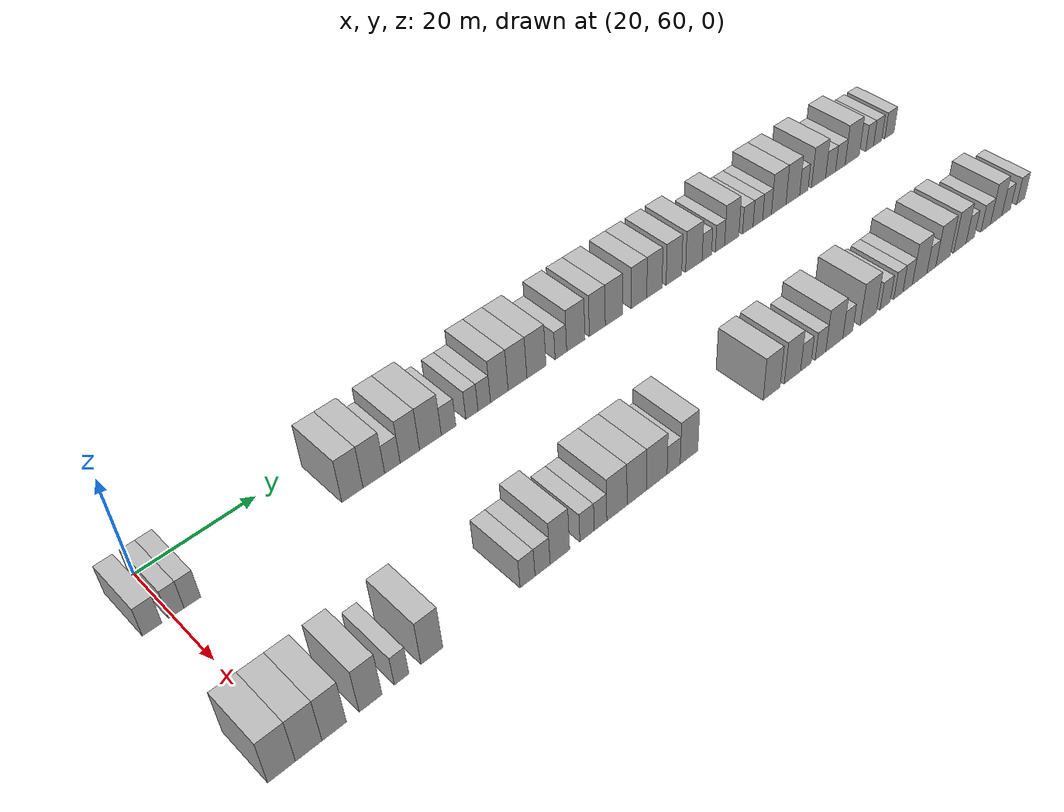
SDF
<sdf version="1.6">
 <world name="default">
  <model name="building_76">
   <static>1</static>
   <pose>25.0000 56.8490 0 0.000000 0.000000 0.000000</pose>
   <link name="link">
    <pose>0 0 3.00 0 0 0</pose>
    <collision name="collision"><geometry><box><size>10.0000 2.9869 6.0000</size></box></geometry></collision>
    <visual name="visual">
     <cast_shadows>0</cast_shadows>
     <geometry><box><size>10.0000 2.9869 6.0000</size></box></geometry>
     <material>
      <script>
       <uri>model://HANNAS_wall/materials/scripts</uri>
       <uri>model://HANNAS_wall/materials/textures</uri>
       <name>vrc/HANNAS_wall</name>
      </script>
     </material>
    </visual>
   </link>
  </model>
  <model name="building_77">
   <static>1</static>
   <pose>25.0000 60.5534 0 0.000000 0.000000 0.000000</pose>
   <link name="link">
    <pose>0 0 3.00 0 0 0</pose>
    <collision name="collision"><geometry><box><size>10.0000 2.4219 6.0000</size></box></geometry></collision>
    <visual name="visual">
     <cast_shadows>0</cast_shadows>
     <geometry><box><size>10.0000 2.4219 6.0000</size></box></geometry>
     <material>
      <script>
       <uri>model://HANNAS_wall/materials/scripts</uri>
       <uri>model://HANNAS_wall/materials/textures</uri>
       <name>vrc/HANNAS_wall</name>
      </script>
     </material>
    </visual>
   </link>
  </model>
  <model name="building_78">
   <static>1</static>
   <pose>25.0000 63.0762 0 0.000000 0.000000 0.000000</pose>
   <link name="link">
    <pose>0 0 3.00 0 0 0</pose>
    <collision name="collision"><geometry><box><size>10.0000 2.6237 6.0000</size></box></geometry></collision>
    <visual name="visual">
     <cast_shadows>0</cast_shadows>
     <geometry><box><size>10.0000 2.6237 6.0000</size></box></geometry>
     <material>
      <script>
       <uri>model://HANNAS_wall/materials/scripts</uri>
       <uri>model://HANNAS_wall/materials/textures</uri>
       <name>vrc/HANNAS_wall</name>
      </script>
     </material>
    </visual>
   </link>
  </model>
  <model name="building_79">
   <static>1</static>
   <pose>25.0000 90.1974 0 0.000000 0.000000 0.000000</pose>
   <link name="link">
    <pose>0 0 4.50 0 0 0</pose>
    <collision name="collision"><geometry><box><size>10.0000 3.8729 9.0000</size></box></geometry></collision>
    <visual name="visual">
     <cast_shadows>0</cast_shadows>
     <geometry><box><size>10.0000 3.8729 9.0000</size></box></geometry>
     <material>
      <script>
       <uri>model://HANNAS_wall/materials/scripts</uri>
       <uri>model://HANNAS_wall/materials/textures</uri>
       <name>vrc/HANNAS_wall</name>
      </script>
     </material>
    </visual>
   </link>
  </model>
  <model name="building_80">
   <static>1</static>
   <pose>25.0000 94.1409 0 0.000000 0.000000 0.000000</pose>
   <link name="link">
    <pose>0 0 4.50 0 0 0</pose>
    <collision name="collision"><geometry><box><size>10.0000 4.0142 9.0000</size></box></geometry></collision>
    <visual name="visual">
     <cast_shadows>0</cast_shadows>
     <geometry><box><size>10.0000 4.0142 9.0000</size></box></geometry>
     <material>
      <script>
       <uri>model://HANNAS_wall/materials/scripts</uri>
       <uri>model://HANNAS_wall/materials/textures</uri>
       <name>vrc/HANNAS_wall</name>
      </script>
     </material>
    </visual>
   </link>
  </model>
  <model name="building_81">
   <static>1</static>
   <pose>25.0000 97.6164 0 0.000000 0.000000 0.000000</pose>
   <link name="link">
    <pose>0 0 3.00 0 0 0</pose>
    <collision name="collision"><geometry><box><size>10.0000 2.9367 6.0000</size></box></geometry></collision>
    <visual name="visual">
     <cast_shadows>0</cast_shadows>
     <geometry><box><size>10.0000 2.9367 6.0000</size></box></geometry>
     <material>
      <script>
       <uri>model://HANNAS_wall/materials/scripts</uri>
       <uri>model://HANNAS_wall/materials/textures</uri>
       <name>vrc/HANNAS_wall</name>
      </script>
     </material>
    </visual>
   </link>
  </model>
  <model name="building_82">
   <static>1</static>
   <pose>25.0000 100.9340 0 0.000000 0.000000 0.000000</pose>
   <link name="link">
    <pose>0 0 4.50 0 0 0</pose>
    <collision name="collision"><geometry><box><size>10.0000 3.6985 9.0000</size></box></geometry></collision>
    <visual name="visual">
     <cast_shadows>0</cast_shadows>
     <geometry><box><size>10.0000 3.6985 9.0000</size></box></geometry>
     <material>
      <script>
       <uri>model://HANNAS_wall/materials/scripts</uri>
       <uri>model://HANNAS_wall/materials/textures</uri>
       <name>vrc/HANNAS_wall</name>
      </script>
     </material>
    </visual>
   </link>
  </model>
  <model name="building_83">
   <static>1</static>
   <pose>25.0000 104.9208 0 0.000000 0.000000 0.000000</pose>
   <link name="link">
    <pose>0 0 4.50 0 0 0</pose>
    <collision name="collision"><geometry><box><size>10.0000 4.2751 9.0000</size></box></geometry></collision>
    <visual name="visual">
     <cast_shadows>0</cast_shadows>
     <geometry><box><size>10.0000 4.2751 9.0000</size></box></geometry>
     <material>
      <script>
       <uri>model://HANNAS_wall/materials/scripts</uri>
       <uri>model://HANNAS_wall/materials/textures</uri>
       <name>vrc/HANNAS_wall</name>
      </script>
     </material>
    </visual>
   </link>
  </model>
  <model name="building_84">
   <static>1</static>
   <pose>25.0000 108.5040 0 0.000000 0.000000 0.000000</pose>
   <link name="link">
    <pose>0 0 3.00 0 0 0</pose>
    <collision name="collision"><geometry><box><size>10.0000 2.8912 6.0000</size></box></geometry></collision>
    <visual name="visual">
     <cast_shadows>0</cast_shadows>
     <geometry><box><size>10.0000 2.8912 6.0000</size></box></geometry>
     <material>
      <script>
       <uri>model://HANNAS_wall/materials/scripts</uri>
       <uri>model://HANNAS_wall/materials/textures</uri>
       <name>vrc/HANNAS_wall</name>
      </script>
     </material>
    </visual>
   </link>
  </model>
  <model name="building_85">
   <static>1</static>
   <pose>25.0000 113.1909 0 0.000000 0.000000 0.000000</pose>
   <link name="link">
    <pose>0 0 3.00 0 0 0</pose>
    <collision name="collision"><geometry><box><size>10.0000 2.4826 6.0000</size></box></geometry></collision>
    <visual name="visual">
     <cast_shadows>0</cast_shadows>
     <geometry><box><size>10.0000 2.4826 6.0000</size></box></geometry>
     <material>
      <script>
       <uri>model://HANNAS_wall/materials/scripts</uri>
       <uri>model://HANNAS_wall/materials/textures</uri>
       <name>vrc/HANNAS_wall</name>
      </script>
     </material>
    </visual>
   </link>
  </model>
  <model name="building_86">
   <static>1</static>
   <pose>25.0000 115.7240 0 0.000000 0.000000 0.000000</pose>
   <link name="link">
    <pose>0 0 3.00 0 0 0</pose>
    <collision name="collision"><geometry><box><size>10.0000 2.5836 6.0000</size></box></geometry></collision>
    <visual name="visual">
     <cast_shadows>0</cast_shadows>
     <geometry><box><size>10.0000 2.5836 6.0000</size></box></geometry>
     <material>
      <script>
       <uri>model://HANNAS_wall/materials/scripts</uri>
       <uri>model://HANNAS_wall/materials/textures</uri>
       <name>vrc/HANNAS_wall</name>
      </script>
     </material>
    </visual>
   </link>
  </model>
  <model name="building_87">
   <static>1</static>
   <pose>25.0000 118.8537 0 0.000000 0.000000 0.000000</pose>
   <link name="link">
    <pose>0 0 4.50 0 0 0</pose>
    <collision name="collision"><geometry><box><size>10.0000 3.6759 9.0000</size></box></geometry></collision>
    <visual name="visual">
     <cast_shadows>0</cast_shadows>
     <geometry><box><size>10.0000 3.6759 9.0000</size></box></geometry>
     <material>
      <script>
       <uri>model://HANNAS_wall/materials/scripts</uri>
       <uri>model://HANNAS_wall/materials/textures</uri>
       <name>vrc/HANNAS_wall</name>
      </script>
     </material>
    </visual>
   </link>
  </model>
  <model name="building_88">
   <static>1</static>
   <pose>25.0000 122.6930 0 0.000000 0.000000 0.000000</pose>
   <link name="link">
    <pose>0 0 4.50 0 0 0</pose>
    <collision name="collision"><geometry><box><size>10.0000 4.0027 9.0000</size></box></geometry></collision>
    <visual name="visual">
     <cast_shadows>0</cast_shadows>
     <geometry><box><size>10.0000 4.0027 9.0000</size></box></geometry>
     <material>
      <script>
       <uri>model://HANNAS_wall/materials/scripts</uri>
       <uri>model://HANNAS_wall/materials/textures</uri>
       <name>vrc/HANNAS_wall</name>
      </script>
     </material>
    </visual>
   </link>
  </model>
  <model name="building_89">
   <static>1</static>
   <pose>25.0000 126.7635 0 0.000000 0.000000 0.000000</pose>
   <link name="link">
    <pose>0 0 4.50 0 0 0</pose>
    <collision name="collision"><geometry><box><size>10.0000 4.1382 9.0000</size></box></geometry></collision>
    <visual name="visual">
     <cast_shadows>0</cast_shadows>
     <geometry><box><size>10.0000 4.1382 9.0000</size></box></geometry>
     <material>
      <script>
       <uri>model://HANNAS_wall/materials/scripts</uri>
       <uri>model://HANNAS_wall/materials/textures</uri>
       <name>vrc/HANNAS_wall</name>
      </script>
     </material>
    </visual>
   </link>
  </model>
  <model name="building_90">
   <static>1</static>
   <pose>25.0000 132.1211 0 0.000000 0.000000 0.000000</pose>
   <link name="link">
    <pose>0 0 3.00 0 0 0</pose>
    <collision name="collision"><geometry><box><size>10.0000 2.5770 6.0000</size></box></geometry></collision>
    <visual name="visual">
     <cast_shadows>0</cast_shadows>
     <geometry><box><size>10.0000 2.5770 6.0000</size></box></geometry>
     <material>
      <script>
       <uri>model://HANNAS_wall/materials/scripts</uri>
       <uri>model://HANNAS_wall/materials/textures</uri>
       <name>vrc/HANNAS_wall</name>
      </script>
     </material>
    </visual>
   </link>
  </model>
  <model name="building_91">
   <static>1</static>
   <pose>25.0000 135.4814 0 0.000000 0.000000 0.000000</pose>
   <link name="link">
    <pose>0 0 4.50 0 0 0</pose>
    <collision name="collision"><geometry><box><size>10.0000 4.1437 9.0000</size></box></geometry></collision>
    <visual name="visual">
     <cast_shadows>0</cast_shadows>
     <geometry><box><size>10.0000 4.1437 9.0000</size></box></geometry>
     <material>
      <script>
       <uri>model://HANNAS_wall/materials/scripts</uri>
       <uri>model://HANNAS_wall/materials/textures</uri>
       <name>vrc/HANNAS_wall</name>
      </script>
     </material>
    </visual>
   </link>
  </model>
  <model name="building_92">
   <static>1</static>
   <pose>25.0000 140.3855 0 0.000000 0.000000 0.000000</pose>
   <link name="link">
    <pose>0 0 4.50 0 0 0</pose>
    <collision name="collision"><geometry><box><size>10.0000 3.6646 9.0000</size></box></geometry></collision>
    <visual name="visual">
     <cast_shadows>0</cast_shadows>
     <geometry><box><size>10.0000 3.6646 9.0000</size></box></geometry>
     <material>
      <script>
       <uri>model://HANNAS_wall/materials/scripts</uri>
       <uri>model://HANNAS_wall/materials/textures</uri>
       <name>vrc/HANNAS_wall</name>
      </script>
     </material>
    </visual>
   </link>
  </model>
  <model name="building_93">
   <static>1</static>
   <pose>25.0000 144.2961 0 0.000000 0.000000 0.000000</pose>
   <link name="link">
    <pose>0 0 4.50 0 0 0</pose>
    <collision name="collision"><geometry><box><size>10.0000 4.1567 9.0000</size></box></geometry></collision>
    <visual name="visual">
     <cast_shadows>0</cast_shadows>
     <geometry><box><size>10.0000 4.1567 9.0000</size></box></geometry>
     <material>
      <script>
       <uri>model://HANNAS_wall/materials/scripts</uri>
       <uri>model://HANNAS_wall/materials/textures</uri>
       <name>vrc/HANNAS_wall</name>
      </script>
     </material>
    </visual>
   </link>
  </model>
  <model name="building_94">
   <static>1</static>
   <pose>25.0000 150.2407 0 0.000000 0.000000 0.000000</pose>
   <link name="link">
    <pose>0 0 4.50 0 0 0</pose>
    <collision name="collision"><geometry><box><size>10.0000 3.7324 9.0000</size></box></geometry></collision>
    <visual name="visual">
     <cast_shadows>0</cast_shadows>
     <geometry><box><size>10.0000 3.7324 9.0000</size></box></geometry>
     <material>
      <script>
       <uri>model://HANNAS_wall/materials/scripts</uri>
       <uri>model://HANNAS_wall/materials/textures</uri>
       <name>vrc/HANNAS_wall</name>
      </script>
     </material>
    </visual>
   </link>
  </model>
  <model name="building_95">
   <static>1</static>
   <pose>25.0000 153.9782 0 0.000000 0.000000 0.000000</pose>
   <link name="link">
    <pose>0 0 4.50 0 0 0</pose>
    <collision name="collision"><geometry><box><size>10.0000 3.7425 9.0000</size></box></geometry></collision>
    <visual name="visual">
     <cast_shadows>0</cast_shadows>
     <geometry><box><size>10.0000 3.7425 9.0000</size></box></geometry>
     <material>
      <script>
       <uri>model://HANNAS_wall/materials/scripts</uri>
       <uri>model://HANNAS_wall/materials/textures</uri>
       <name>vrc/HANNAS_wall</name>
      </script>
     </material>
    </visual>
   </link>
  </model>
  <model name="building_96">
   <static>1</static>
   <pose>25.0000 158.7867 0 0.000000 0.000000 0.000000</pose>
   <link name="link">
    <pose>0 0 4.50 0 0 0</pose>
    <collision name="collision"><geometry><box><size>10.0000 3.8747 9.0000</size></box></geometry></collision>
    <visual name="visual">
     <cast_shadows>0</cast_shadows>
     <geometry><box><size>10.0000 3.8747 9.0000</size></box></geometry>
     <material>
      <script>
       <uri>model://HANNAS_wall/materials/scripts</uri>
       <uri>model://HANNAS_wall/materials/textures</uri>
       <name>vrc/HANNAS_wall</name>
      </script>
     </material>
    </visual>
   </link>
  </model>
  <model name="building_97">
   <static>1</static>
   <pose>25.0000 163.8333 0 0.000000 0.000000 0.000000</pose>
   <link name="link">
    <pose>0 0 4.50 0 0 0</pose>
    <collision name="collision"><geometry><box><size>10.0000 4.2186 9.0000</size></box></geometry></collision>
    <visual name="visual">
     <cast_shadows>0</cast_shadows>
     <geometry><box><size>10.0000 4.2186 9.0000</size></box></geometry>
     <material>
      <script>
       <uri>model://HANNAS_wall/materials/scripts</uri>
       <uri>model://HANNAS_wall/materials/textures</uri>
       <name>vrc/HANNAS_wall</name>
      </script>
     </material>
    </visual>
   </link>
  </model>
  <model name="building_98">
   <static>1</static>
   <pose>25.0000 167.1718 0 0.000000 0.000000 0.000000</pose>
   <link name="link">
    <pose>0 0 3.00 0 0 0</pose>
    <collision name="collision"><geometry><box><size>10.0000 2.4583 6.0000</size></box></geometry></collision>
    <visual name="visual">
     <cast_shadows>0</cast_shadows>
     <geometry><box><size>10.0000 2.4583 6.0000</size></box></geometry>
     <material>
      <script>
       <uri>model://HANNAS_wall/materials/scripts</uri>
       <uri>model://HANNAS_wall/materials/textures</uri>
       <name>vrc/HANNAS_wall</name>
      </script>
     </material>
    </visual>
   </link>
  </model>
  <model name="building_99">
   <static>1</static>
   <pose>25.0000 170.6117 0 0.000000 0.000000 0.000000</pose>
   <link name="link">
    <pose>0 0 3.00 0 0 0</pose>
    <collision name="collision"><geometry><box><size>10.0000 2.4215 6.0000</size></box></geometry></collision>
    <visual name="visual">
     <cast_shadows>0</cast_shadows>
     <geometry><box><size>10.0000 2.4215 6.0000</size></box></geometry>
     <material>
      <script>
       <uri>model://HANNAS_wall/materials/scripts</uri>
       <uri>model://HANNAS_wall/materials/textures</uri>
       <name>vrc/HANNAS_wall</name>
      </script>
     </material>
    </visual>
   </link>
  </model>
  <model name="building_100">
   <static>1</static>
   <pose>25.0000 173.7237 0 0.000000 0.000000 0.000000</pose>
   <link name="link">
    <pose>0 0 4.50 0 0 0</pose>
    <collision name="collision"><geometry><box><size>10.0000 3.8026 9.0000</size></box></geometry></collision>
    <visual name="visual">
     <cast_shadows>0</cast_shadows>
     <geometry><box><size>10.0000 3.8026 9.0000</size></box></geometry>
     <material>
      <script>
       <uri>model://HANNAS_wall/materials/scripts</uri>
       <uri>model://HANNAS_wall/materials/textures</uri>
       <name>vrc/HANNAS_wall</name>
      </script>
     </material>
    </visual>
   </link>
  </model>
  <model name="building_101">
   <static>1</static>
   <pose>25.0000 178.0550 0 0.000000 0.000000 0.000000</pose>
   <link name="link">
    <pose>0 0 3.00 0 0 0</pose>
    <collision name="collision"><geometry><box><size>10.0000 2.8601 6.0000</size></box></geometry></collision>
    <visual name="visual">
     <cast_shadows>0</cast_shadows>
     <geometry><box><size>10.0000 2.8601 6.0000</size></box></geometry>
     <material>
      <script>
       <uri>model://HANNAS_wall/materials/scripts</uri>
       <uri>model://HANNAS_wall/materials/textures</uri>
       <name>vrc/HANNAS_wall</name>
      </script>
     </material>
    </visual>
   </link>
  </model>
  <model name="building_102">
   <static>1</static>
   <pose>25.0000 180.8030 0 0.000000 0.000000 0.000000</pose>
   <link name="link">
    <pose>0 0 3.00 0 0 0</pose>
    <collision name="collision"><geometry><box><size>10.0000 2.6358 6.0000</size></box></geometry></collision>
    <visual name="visual">
     <cast_shadows>0</cast_shadows>
     <geometry><box><size>10.0000 2.6358 6.0000</size></box></geometry>
     <material>
      <script>
       <uri>model://HANNAS_wall/materials/scripts</uri>
       <uri>model://HANNAS_wall/materials/textures</uri>
       <name>vrc/HANNAS_wall</name>
      </script>
     </material>
    </visual>
   </link>
  </model>
  <model name="building_103">
   <static>1</static>
   <pose>25.0000 183.3406 0 0.000000 0.000000 0.000000</pose>
   <link name="link">
    <pose>0 0 3.00 0 0 0</pose>
    <collision name="collision"><geometry><box><size>10.0000 2.4395 6.0000</size></box></geometry></collision>
    <visual name="visual">
     <cast_shadows>0</cast_shadows>
     <geometry><box><size>10.0000 2.4395 6.0000</size></box></geometry>
     <material>
      <script>
       <uri>model://HANNAS_wall/materials/scripts</uri>
       <uri>model://HANNAS_wall/materials/textures</uri>
       <name>vrc/HANNAS_wall</name>
      </script>
     </material>
    </visual>
   </link>
  </model>
  <model name="building_104">
   <static>1</static>
   <pose>25.0000 186.6001 0 0.000000 0.000000 0.000000</pose>
   <link name="link">
    <pose>0 0 4.50 0 0 0</pose>
    <collision name="collision"><geometry><box><size>10.0000 4.0794 9.0000</size></box></geometry></collision>
    <visual name="visual">
     <cast_shadows>0</cast_shadows>
     <geometry><box><size>10.0000 4.0794 9.0000</size></box></geometry>
     <material>
      <script>
       <uri>model://HANNAS_wall/materials/scripts</uri>
       <uri>model://HANNAS_wall/materials/textures</uri>
       <name>vrc/HANNAS_wall</name>
      </script>
     </material>
    </visual>
   </link>
  </model>
  <model name="building_105">
   <static>1</static>
   <pose>25.0000 190.5987 0 0.000000 0.000000 0.000000</pose>
   <link name="link">
    <pose>0 0 4.50 0 0 0</pose>
    <collision name="collision"><geometry><box><size>10.0000 3.9179 9.0000</size></box></geometry></collision>
    <visual name="visual">
     <cast_shadows>0</cast_shadows>
     <geometry><box><size>10.0000 3.9179 9.0000</size></box></geometry>
     <material>
      <script>
       <uri>model://HANNAS_wall/materials/scripts</uri>
       <uri>model://HANNAS_wall/materials/textures</uri>
       <name>vrc/HANNAS_wall</name>
      </script>
     </material>
    </visual>
   </link>
  </model>
  <model name="building_106">
   <static>1</static>
   <pose>25.0000 193.7771 0 0.000000 0.000000 0.000000</pose>
   <link name="link">
    <pose>0 0 3.00 0 0 0</pose>
    <collision name="collision"><geometry><box><size>10.0000 2.4388 6.0000</size></box></geometry></collision>
    <visual name="visual">
     <cast_shadows>0</cast_shadows>
     <geometry><box><size>10.0000 2.4388 6.0000</size></box></geometry>
     <material>
      <script>
       <uri>model://HANNAS_wall/materials/scripts</uri>
       <uri>model://HANNAS_wall/materials/textures</uri>
       <name>vrc/HANNAS_wall</name>
      </script>
     </material>
    </visual>
   </link>
  </model>
  <model name="building_107">
   <static>1</static>
   <pose>25.0000 198.0793 0 0.000000 0.000000 0.000000</pose>
   <link name="link">
    <pose>0 0 4.50 0 0 0</pose>
    <collision name="collision"><geometry><box><size>10.0000 4.1656 9.0000</size></box></geometry></collision>
    <visual name="visual">
     <cast_shadows>0</cast_shadows>
     <geometry><box><size>10.0000 4.1656 9.0000</size></box></geometry>
     <material>
      <script>
       <uri>model://HANNAS_wall/materials/scripts</uri>
       <uri>model://HANNAS_wall/materials/textures</uri>
       <name>vrc/HANNAS_wall</name>
      </script>
     </material>
    </visual>
   </link>
  </model>
  <model name="building_108">
   <static>1</static>
   <pose>25.0000 201.6499 0 0.000000 0.000000 0.000000</pose>
   <link name="link">
    <pose>0 0 3.00 0 0 0</pose>
    <collision name="collision"><geometry><box><size>10.0000 2.9756 6.0000</size></box></geometry></collision>
    <visual name="visual">
     <cast_shadows>0</cast_shadows>
     <geometry><box><size>10.0000 2.9756 6.0000</size></box></geometry>
     <material>
      <script>
       <uri>model://HANNAS_wall/materials/scripts</uri>
       <uri>model://HANNAS_wall/materials/textures</uri>
       <name>vrc/HANNAS_wall</name>
      </script>
     </material>
    </visual>
   </link>
  </model>
  <model name="building_109">
   <static>1</static>
   <pose>25.0000 204.5914 0 0.000000 0.000000 0.000000</pose>
   <link name="link">
    <pose>0 0 3.00 0 0 0</pose>
    <collision name="collision"><geometry><box><size>10.0000 2.9075 6.0000</size></box></geometry></collision>
    <visual name="visual">
     <cast_shadows>0</cast_shadows>
     <geometry><box><size>10.0000 2.9075 6.0000</size></box></geometry>
     <material>
      <script>
       <uri>model://HANNAS_wall/materials/scripts</uri>
       <uri>model://HANNAS_wall/materials/textures</uri>
       <name>vrc/HANNAS_wall</name>
      </script>
     </material>
    </visual>
   </link>
  </model>
  <model name="building_110">
   <static>1</static>
   <pose>25.0000 208.2101 0 0.000000 0.000000 0.000000</pose>
   <link name="link">
    <pose>0 0 4.50 0 0 0</pose>
    <collision name="collision"><geometry><box><size>10.0000 4.3299 9.0000</size></box></geometry></collision>
    <visual name="visual">
     <cast_shadows>0</cast_shadows>
     <geometry><box><size>10.0000 4.3299 9.0000</size></box></geometry>
     <material>
      <script>
       <uri>model://HANNAS_wall/materials/scripts</uri>
       <uri>model://HANNAS_wall/materials/textures</uri>
       <name>vrc/HANNAS_wall</name>
      </script>
     </material>
    </visual>
   </link>
  </model>
  <model name="building_111">
   <static>1</static>
   <pose>25.0000 213.5920 0 0.000000 0.000000 0.000000</pose>
   <link name="link">
    <pose>0 0 3.00 0 0 0</pose>
    <collision name="collision"><geometry><box><size>10.0000 2.4338 6.0000</size></box></geometry></collision>
    <visual name="visual">
     <cast_shadows>0</cast_shadows>
     <geometry><box><size>10.0000 2.4338 6.0000</size></box></geometry>
     <material>
      <script>
       <uri>model://HANNAS_wall/materials/scripts</uri>
       <uri>model://HANNAS_wall/materials/textures</uri>
       <name>vrc/HANNAS_wall</name>
      </script>
     </material>
    </visual>
   </link>
  </model>
  <model name="building_112">
   <static>1</static>
   <pose>25.0000 216.1003 0 0.000000 0.000000 0.000000</pose>
   <link name="link">
    <pose>0 0 3.00 0 0 0</pose>
    <collision name="collision"><geometry><box><size>10.0000 2.5828 6.0000</size></box></geometry></collision>
    <visual name="visual">
     <cast_shadows>0</cast_shadows>
     <geometry><box><size>10.0000 2.5828 6.0000</size></box></geometry>
     <material>
      <script>
       <uri>model://HANNAS_wall/materials/scripts</uri>
       <uri>model://HANNAS_wall/materials/textures</uri>
       <name>vrc/HANNAS_wall</name>
      </script>
     </material>
    </visual>
   </link>
  </model>
  <model name="building_113">
   <static>1</static>
   <pose>25.0000 219.8788 0 0.000000 0.000000 0.000000</pose>
   <link name="link">
    <pose>0 0 3.00 0 0 0</pose>
    <collision name="collision"><geometry><box><size>10.0000 2.9742 6.0000</size></box></geometry></collision>
    <visual name="visual">
     <cast_shadows>0</cast_shadows>
     <geometry><box><size>10.0000 2.9742 6.0000</size></box></geometry>
     <material>
      <script>
       <uri>model://HANNAS_wall/materials/scripts</uri>
       <uri>model://HANNAS_wall/materials/textures</uri>
       <name>vrc/HANNAS_wall</name>
      </script>
     </material>
    </visual>
   </link>
  </model>
  <model name="building_185">
   <static>1</static>
   <pose>55.0000 56.9413 0 0.000000 0.000000 0.000000</pose>
   <link name="link">
    <pose>0 0 4.50 0 0 0</pose>
    <collision name="collision"><geometry><box><size>10.0000 4.1341 9.0000</size></box></geometry></collision>
    <visual name="visual">
     <cast_shadows>0</cast_shadows>
     <geometry><box><size>10.0000 4.1341 9.0000</size></box></geometry>
     <material>
      <script>
       <uri>model://HANNAS_wall/materials/scripts</uri>
       <uri>model://HANNAS_wall/materials/textures</uri>
       <name>vrc/HANNAS_wall</name>
      </script>
     </material>
    </visual>
   </link>
  </model>
  <model name="building_186">
   <static>1</static>
   <pose>55.0000 61.0222 0 0.000000 0.000000 0.000000</pose>
   <link name="link">
    <pose>0 0 4.50 0 0 0</pose>
    <collision name="collision"><geometry><box><size>10.0000 4.0276 9.0000</size></box></geometry></collision>
    <visual name="visual">
     <cast_shadows>0</cast_shadows>
     <geometry><box><size>10.0000 4.0276 9.0000</size></box></geometry>
     <material>
      <script>
       <uri>model://HANNAS_wall/materials/scripts</uri>
       <uri>model://HANNAS_wall/materials/textures</uri>
       <name>vrc/HANNAS_wall</name>
      </script>
     </material>
    </visual>
   </link>
  </model>
  <model name="building_187">
   <static>1</static>
   <pose>55.0000 64.9291 0 0.000000 0.000000 0.000000</pose>
   <link name="link">
    <pose>0 0 4.50 0 0 0</pose>
    <collision name="collision"><geometry><box><size>10.0000 3.7862 9.0000</size></box></geometry></collision>
    <visual name="visual">
     <cast_shadows>0</cast_shadows>
     <geometry><box><size>10.0000 3.7862 9.0000</size></box></geometry>
     <material>
      <script>
       <uri>model://HANNAS_wall/materials/scripts</uri>
       <uri>model://HANNAS_wall/materials/textures</uri>
       <name>vrc/HANNAS_wall</name>
      </script>
     </material>
    </visual>
   </link>
  </model>
  <model name="building_188">
   <static>1</static>
   <pose>55.0000 70.6617 0 0.000000 0.000000 0.000000</pose>
   <link name="link">
    <pose>0 0 4.50 0 0 0</pose>
    <collision name="collision"><geometry><box><size>10.0000 3.6790 9.0000</size></box></geometry></collision>
    <visual name="visual">
     <cast_shadows>0</cast_shadows>
     <geometry><box><size>10.0000 3.6790 9.0000</size></box></geometry>
     <material>
      <script>
       <uri>model://HANNAS_wall/materials/scripts</uri>
       <uri>model://HANNAS_wall/materials/textures</uri>
       <name>vrc/HANNAS_wall</name>
      </script>
     </material>
    </visual>
   </link>
  </model>
  <model name="building_189">
   <static>1</static>
   <pose>55.0000 75.7081 0 0.000000 0.000000 0.000000</pose>
   <link name="link">
    <pose>0 0 3.00 0 0 0</pose>
    <collision name="collision"><geometry><box><size>10.0000 2.4136 6.0000</size></box></geometry></collision>
    <visual name="visual">
     <cast_shadows>0</cast_shadows>
     <geometry><box><size>10.0000 2.4136 6.0000</size></box></geometry>
     <material>
      <script>
       <uri>model://HANNAS_wall/materials/scripts</uri>
       <uri>model://HANNAS_wall/materials/textures</uri>
       <name>vrc/HANNAS_wall</name>
      </script>
     </material>
    </visual>
   </link>
  </model>
  <model name="building_190">
   <static>1</static>
   <pose>55.0000 80.7735 0 0.000000 0.000000 0.000000</pose>
   <link name="link">
    <pose>0 0 4.50 0 0 0</pose>
    <collision name="collision"><geometry><box><size>10.0000 3.7173 9.0000</size></box></geometry></collision>
    <visual name="visual">
     <cast_shadows>0</cast_shadows>
     <geometry><box><size>10.0000 3.7173 9.0000</size></box></geometry>
     <material>
      <script>
       <uri>model://HANNAS_wall/materials/scripts</uri>
       <uri>model://HANNAS_wall/materials/textures</uri>
       <name>vrc/HANNAS_wall</name>
      </script>
     </material>
    </visual>
   </link>
  </model>
  <model name="building_191">
   <static>1</static>
   <pose>55.0000 97.8219 0 0.000000 0.000000 0.000000</pose>
   <link name="link">
    <pose>0 0 3.00 0 0 0</pose>
    <collision name="collision"><geometry><box><size>10.0000 2.7932 6.0000</size></box></geometry></collision>
    <visual name="visual">
     <cast_shadows>0</cast_shadows>
     <geometry><box><size>10.0000 2.7932 6.0000</size></box></geometry>
     <material>
      <script>
       <uri>model://HANNAS_wall/materials/scripts</uri>
       <uri>model://HANNAS_wall/materials/textures</uri>
       <name>vrc/HANNAS_wall</name>
      </script>
     </material>
    </visual>
   </link>
  </model>
  <model name="building_192">
   <static>1</static>
   <pose>55.0000 100.6555 0 0.000000 0.000000 0.000000</pose>
   <link name="link">
    <pose>0 0 3.00 0 0 0</pose>
    <collision name="collision"><geometry><box><size>10.0000 2.8741 6.0000</size></box></geometry></collision>
    <visual name="visual">
     <cast_shadows>0</cast_shadows>
     <geometry><box><size>10.0000 2.8741 6.0000</size></box></geometry>
     <material>
      <script>
       <uri>model://HANNAS_wall/materials/scripts</uri>
       <uri>model://HANNAS_wall/materials/textures</uri>
       <name>vrc/HANNAS_wall</name>
      </script>
     </material>
    </visual>
   </link>
  </model>
  <model name="building_193">
   <static>1</static>
   <pose>55.0000 103.9658 0 0.000000 0.000000 0.000000</pose>
   <link name="link">
    <pose>0 0 4.50 0 0 0</pose>
    <collision name="collision"><geometry><box><size>10.0000 3.7465 9.0000</size></box></geometry></collision>
    <visual name="visual">
     <cast_shadows>0</cast_shadows>
     <geometry><box><size>10.0000 3.7465 9.0000</size></box></geometry>
     <material>
      <script>
       <uri>model://HANNAS_wall/materials/scripts</uri>
       <uri>model://HANNAS_wall/materials/textures</uri>
       <name>vrc/HANNAS_wall</name>
      </script>
     </material>
    </visual>
   </link>
  </model>
  <model name="building_194">
   <static>1</static>
   <pose>55.0000 109.2585 0 0.000000 0.000000 0.000000</pose>
   <link name="link">
    <pose>0 0 3.00 0 0 0</pose>
    <collision name="collision"><geometry><box><size>10.0000 2.8388 6.0000</size></box></geometry></collision>
    <visual name="visual">
     <cast_shadows>0</cast_shadows>
     <geometry><box><size>10.0000 2.8388 6.0000</size></box></geometry>
     <material>
      <script>
       <uri>model://HANNAS_wall/materials/scripts</uri>
       <uri>model://HANNAS_wall/materials/textures</uri>
       <name>vrc/HANNAS_wall</name>
      </script>
     </material>
    </visual>
   </link>
  </model>
  <model name="building_195">
   <static>1</static>
   <pose>55.0000 111.9450 0 0.000000 0.000000 0.000000</pose>
   <link name="link">
    <pose>0 0 3.00 0 0 0</pose>
    <collision name="collision"><geometry><box><size>10.0000 2.5341 6.0000</size></box></geometry></collision>
    <visual name="visual">
     <cast_shadows>0</cast_shadows>
     <geometry><box><size>10.0000 2.5341 6.0000</size></box></geometry>
     <material>
      <script>
       <uri>model://HANNAS_wall/materials/scripts</uri>
       <uri>model://HANNAS_wall/materials/textures</uri>
       <name>vrc/HANNAS_wall</name>
      </script>
     </material>
    </visual>
   </link>
  </model>
  <model name="building_196">
   <static>1</static>
   <pose>55.0000 115.2710 0 0.000000 0.000000 0.000000</pose>
   <link name="link">
    <pose>0 0 4.50 0 0 0</pose>
    <collision name="collision"><geometry><box><size>10.0000 4.1179 9.0000</size></box></geometry></collision>
    <visual name="visual">
     <cast_shadows>0</cast_shadows>
     <geometry><box><size>10.0000 4.1179 9.0000</size></box></geometry>
     <material>
      <script>
       <uri>model://HANNAS_wall/materials/scripts</uri>
       <uri>model://HANNAS_wall/materials/textures</uri>
       <name>vrc/HANNAS_wall</name>
      </script>
     </material>
    </visual>
   </link>
  </model>
  <model name="building_197">
   <static>1</static>
   <pose>55.0000 119.3615 0 0.000000 0.000000 0.000000</pose>
   <link name="link">
    <pose>0 0 4.50 0 0 0</pose>
    <collision name="collision"><geometry><box><size>10.0000 4.0631 9.0000</size></box></geometry></collision>
    <visual name="visual">
     <cast_shadows>0</cast_shadows>
     <geometry><box><size>10.0000 4.0631 9.0000</size></box></geometry>
     <material>
      <script>
       <uri>model://HANNAS_wall/materials/scripts</uri>
       <uri>model://HANNAS_wall/materials/textures</uri>
       <name>vrc/HANNAS_wall</name>
      </script>
     </material>
    </visual>
   </link>
  </model>
  <model name="building_198">
   <static>1</static>
   <pose>55.0000 123.5922 0 0.000000 0.000000 0.000000</pose>
   <link name="link">
    <pose>0 0 4.50 0 0 0</pose>
    <collision name="collision"><geometry><box><size>10.0000 4.3982 9.0000</size></box></geometry></collision>
    <visual name="visual">
     <cast_shadows>0</cast_shadows>
     <geometry><box><size>10.0000 4.3982 9.0000</size></box></geometry>
     <material>
      <script>
       <uri>model://HANNAS_wall/materials/scripts</uri>
       <uri>model://HANNAS_wall/materials/textures</uri>
       <name>vrc/HANNAS_wall</name>
      </script>
     </material>
    </visual>
   </link>
  </model>
  <model name="building_199">
   <static>1</static>
   <pose>55.0000 127.2169 0 0.000000 0.000000 0.000000</pose>
   <link name="link">
    <pose>0 0 3.00 0 0 0</pose>
    <collision name="collision"><geometry><box><size>10.0000 2.8513 6.0000</size></box></geometry></collision>
    <visual name="visual">
     <cast_shadows>0</cast_shadows>
     <geometry><box><size>10.0000 2.8513 6.0000</size></box></geometry>
     <material>
      <script>
       <uri>model://HANNAS_wall/materials/scripts</uri>
       <uri>model://HANNAS_wall/materials/textures</uri>
       <name>vrc/HANNAS_wall</name>
      </script>
     </material>
    </visual>
   </link>
  </model>
  <model name="building_200">
   <static>1</static>
   <pose>55.0000 130.5860 0 0.000000 0.000000 0.000000</pose>
   <link name="link">
    <pose>0 0 4.50 0 0 0</pose>
    <collision name="collision"><geometry><box><size>10.0000 3.8870 9.0000</size></box></geometry></collision>
    <visual name="visual">
     <cast_shadows>0</cast_shadows>
     <geometry><box><size>10.0000 3.8870 9.0000</size></box></geometry>
     <material>
      <script>
       <uri>model://HANNAS_wall/materials/scripts</uri>
       <uri>model://HANNAS_wall/materials/textures</uri>
       <name>vrc/HANNAS_wall</name>
      </script>
     </material>
    </visual>
   </link>
  </model>
  <model name="building_201">
   <static>1</static>
   <pose>55.0000 149.7104 0 0.000000 0.000000 0.000000</pose>
   <link name="link">
    <pose>0 0 4.50 0 0 0</pose>
    <collision name="collision"><geometry><box><size>10.0000 4.1205 9.0000</size></box></geometry></collision>
    <visual name="visual">
     <cast_shadows>0</cast_shadows>
     <geometry><box><size>10.0000 4.1205 9.0000</size></box></geometry>
     <material>
      <script>
       <uri>model://HANNAS_wall/materials/scripts</uri>
       <uri>model://HANNAS_wall/materials/textures</uri>
       <name>vrc/HANNAS_wall</name>
      </script>
     </material>
    </visual>
   </link>
  </model>
  <model name="building_202">
   <static>1</static>
   <pose>55.0000 154.7931 0 0.000000 0.000000 0.000000</pose>
   <link name="link">
    <pose>0 0 4.50 0 0 0</pose>
    <collision name="collision"><geometry><box><size>10.0000 4.0450 9.0000</size></box></geometry></collision>
    <visual name="visual">
     <cast_shadows>0</cast_shadows>
     <geometry><box><size>10.0000 4.0450 9.0000</size></box></geometry>
     <material>
      <script>
       <uri>model://HANNAS_wall/materials/scripts</uri>
       <uri>model://HANNAS_wall/materials/textures</uri>
       <name>vrc/HANNAS_wall</name>
      </script>
     </material>
    </visual>
   </link>
  </model>
  <model name="building_203">
   <static>1</static>
   <pose>55.0000 158.1540 0 0.000000 0.000000 0.000000</pose>
   <link name="link">
    <pose>0 0 3.00 0 0 0</pose>
    <collision name="collision"><geometry><box><size>10.0000 2.6766 6.0000</size></box></geometry></collision>
    <visual name="visual">
     <cast_shadows>0</cast_shadows>
     <geometry><box><size>10.0000 2.6766 6.0000</size></box></geometry>
     <material>
      <script>
       <uri>model://HANNAS_wall/materials/scripts</uri>
       <uri>model://HANNAS_wall/materials/textures</uri>
       <name>vrc/HANNAS_wall</name>
      </script>
     </material>
    </visual>
   </link>
  </model>
  <model name="building_204">
   <static>1</static>
   <pose>55.0000 161.8567 0 0.000000 0.000000 0.000000</pose>
   <link name="link">
    <pose>0 0 3.00 0 0 0</pose>
    <collision name="collision"><geometry><box><size>10.0000 2.7288 6.0000</size></box></geometry></collision>
    <visual name="visual">
     <cast_shadows>0</cast_shadows>
     <geometry><box><size>10.0000 2.7288 6.0000</size></box></geometry>
     <material>
      <script>
       <uri>model://HANNAS_wall/materials/scripts</uri>
       <uri>model://HANNAS_wall/materials/textures</uri>
       <name>vrc/HANNAS_wall</name>
      </script>
     </material>
    </visual>
   </link>
  </model>
  <model name="building_205">
   <static>1</static>
   <pose>55.0000 165.4333 0 0.000000 0.000000 0.000000</pose>
   <link name="link">
    <pose>0 0 4.50 0 0 0</pose>
    <collision name="collision"><geometry><box><size>10.0000 4.4243 9.0000</size></box></geometry></collision>
    <visual name="visual">
     <cast_shadows>0</cast_shadows>
     <geometry><box><size>10.0000 4.4243 9.0000</size></box></geometry>
     <material>
      <script>
       <uri>model://HANNAS_wall/materials/scripts</uri>
       <uri>model://HANNAS_wall/materials/textures</uri>
       <name>vrc/HANNAS_wall</name>
      </script>
     </material>
    </visual>
   </link>
  </model>
  <model name="building_206">
   <static>1</static>
   <pose>55.0000 168.9586 0 0.000000 0.000000 0.000000</pose>
   <link name="link">
    <pose>0 0 3.00 0 0 0</pose>
    <collision name="collision"><geometry><box><size>10.0000 2.6263 6.0000</size></box></geometry></collision>
    <visual name="visual">
     <cast_shadows>0</cast_shadows>
     <geometry><box><size>10.0000 2.6263 6.0000</size></box></geometry>
     <material>
      <script>
       <uri>model://HANNAS_wall/materials/scripts</uri>
       <uri>model://HANNAS_wall/materials/textures</uri>
       <name>vrc/HANNAS_wall</name>
      </script>
     </material>
    </visual>
   </link>
  </model>
  <model name="building_207">
   <static>1</static>
   <pose>55.0000 174.4772 0 0.000000 0.000000 0.000000</pose>
   <link name="link">
    <pose>0 0 4.50 0 0 0</pose>
    <collision name="collision"><geometry><box><size>10.0000 4.4108 9.0000</size></box></geometry></collision>
    <visual name="visual">
     <cast_shadows>0</cast_shadows>
     <geometry><box><size>10.0000 4.4108 9.0000</size></box></geometry>
     <material>
      <script>
       <uri>model://HANNAS_wall/materials/scripts</uri>
       <uri>model://HANNAS_wall/materials/textures</uri>
       <name>vrc/HANNAS_wall</name>
      </script>
     </material>
    </visual>
   </link>
  </model>
  <model name="building_208">
   <static>1</static>
   <pose>55.0000 179.0783 0 0.000000 0.000000 0.000000</pose>
   <link name="link">
    <pose>0 0 3.00 0 0 0</pose>
    <collision name="collision"><geometry><box><size>10.0000 2.7914 6.0000</size></box></geometry></collision>
    <visual name="visual">
     <cast_shadows>0</cast_shadows>
     <geometry><box><size>10.0000 2.7914 6.0000</size></box></geometry>
     <material>
      <script>
       <uri>model://HANNAS_wall/materials/scripts</uri>
       <uri>model://HANNAS_wall/materials/textures</uri>
       <name>vrc/HANNAS_wall</name>
      </script>
     </material>
    </visual>
   </link>
  </model>
  <model name="building_209">
   <static>1</static>
   <pose>55.0000 182.7574 0 0.000000 0.000000 0.000000</pose>
   <link name="link">
    <pose>0 0 3.00 0 0 0</pose>
    <collision name="collision"><geometry><box><size>10.0000 2.5670 6.0000</size></box></geometry></collision>
    <visual name="visual">
     <cast_shadows>0</cast_shadows>
     <geometry><box><size>10.0000 2.5670 6.0000</size></box></geometry>
     <material>
      <script>
       <uri>model://HANNAS_wall/materials/scripts</uri>
       <uri>model://HANNAS_wall/materials/textures</uri>
       <name>vrc/HANNAS_wall</name>
      </script>
     </material>
    </visual>
   </link>
  </model>
  <model name="building_210">
   <static>1</static>
   <pose>55.0000 185.3938 0 0.000000 0.000000 0.000000</pose>
   <link name="link">
    <pose>0 0 3.00 0 0 0</pose>
    <collision name="collision"><geometry><box><size>10.0000 2.7058 6.0000</size></box></geometry></collision>
    <visual name="visual">
     <cast_shadows>0</cast_shadows>
     <geometry><box><size>10.0000 2.7058 6.0000</size></box></geometry>
     <material>
      <script>
       <uri>model://HANNAS_wall/materials/scripts</uri>
       <uri>model://HANNAS_wall/materials/textures</uri>
       <name>vrc/HANNAS_wall</name>
      </script>
     </material>
    </visual>
   </link>
  </model>
  <model name="building_211">
   <static>1</static>
   <pose>55.0000 188.8350 0 0.000000 0.000000 0.000000</pose>
   <link name="link">
    <pose>0 0 4.50 0 0 0</pose>
    <collision name="collision"><geometry><box><size>10.0000 4.1766 9.0000</size></box></geometry></collision>
    <visual name="visual">
     <cast_shadows>0</cast_shadows>
     <geometry><box><size>10.0000 4.1766 9.0000</size></box></geometry>
     <material>
      <script>
       <uri>model://HANNAS_wall/materials/scripts</uri>
       <uri>model://HANNAS_wall/materials/textures</uri>
       <name>vrc/HANNAS_wall</name>
      </script>
     </material>
    </visual>
   </link>
  </model>
  <model name="building_212">
   <static>1</static>
   <pose>55.0000 192.2383 0 0.000000 0.000000 0.000000</pose>
   <link name="link">
    <pose>0 0 3.00 0 0 0</pose>
    <collision name="collision"><geometry><box><size>10.0000 2.6299 6.0000</size></box></geometry></collision>
    <visual name="visual">
     <cast_shadows>0</cast_shadows>
     <geometry><box><size>10.0000 2.6299 6.0000</size></box></geometry>
     <material>
      <script>
       <uri>model://HANNAS_wall/materials/scripts</uri>
       <uri>model://HANNAS_wall/materials/textures</uri>
       <name>vrc/HANNAS_wall</name>
      </script>
     </material>
    </visual>
   </link>
  </model>
  <model name="building_213">
   <static>1</static>
   <pose>55.0000 195.7118 0 0.000000 0.000000 0.000000</pose>
   <link name="link">
    <pose>0 0 4.50 0 0 0</pose>
    <collision name="collision"><geometry><box><size>10.0000 4.3170 9.0000</size></box></geometry></collision>
    <visual name="visual">
     <cast_shadows>0</cast_shadows>
     <geometry><box><size>10.0000 4.3170 9.0000</size></box></geometry>
     <material>
      <script>
       <uri>model://HANNAS_wall/materials/scripts</uri>
       <uri>model://HANNAS_wall/materials/textures</uri>
       <name>vrc/HANNAS_wall</name>
      </script>
     </material>
    </visual>
   </link>
  </model>
  <model name="building_214">
   <static>1</static>
   <pose>55.0000 200.7744 0 0.000000 0.000000 0.000000</pose>
   <link name="link">
    <pose>0 0 4.50 0 0 0</pose>
    <collision name="collision"><geometry><box><size>10.0000 3.8082 9.0000</size></box></geometry></collision>
    <visual name="visual">
     <cast_shadows>0</cast_shadows>
     <geometry><box><size>10.0000 3.8082 9.0000</size></box></geometry>
     <material>
      <script>
       <uri>model://HANNAS_wall/materials/scripts</uri>
       <uri>model://HANNAS_wall/materials/textures</uri>
       <name>vrc/HANNAS_wall</name>
      </script>
     </material>
    </visual>
   </link>
  </model>
  <model name="building_215">
   <static>1</static>
   <pose>55.0000 203.9567 0 0.000000 0.000000 0.000000</pose>
   <link name="link">
    <pose>0 0 3.00 0 0 0</pose>
    <collision name="collision"><geometry><box><size>10.0000 2.5563 6.0000</size></box></geometry></collision>
    <visual name="visual">
     <cast_shadows>0</cast_shadows>
     <geometry><box><size>10.0000 2.5563 6.0000</size></box></geometry>
     <material>
      <script>
       <uri>model://HANNAS_wall/materials/scripts</uri>
       <uri>model://HANNAS_wall/materials/textures</uri>
       <name>vrc/HANNAS_wall</name>
      </script>
     </material>
    </visual>
   </link>
  </model>
  <model name="building_216">
   <static>1</static>
   <pose>55.0000 208.7298 0 0.000000 0.000000 0.000000</pose>
   <link name="link">
    <pose>0 0 3.00 0 0 0</pose>
    <collision name="collision"><geometry><box><size>10.0000 2.9898 6.0000</size></box></geometry></collision>
    <visual name="visual">
     <cast_shadows>0</cast_shadows>
     <geometry><box><size>10.0000 2.9898 6.0000</size></box></geometry>
     <material>
      <script>
       <uri>model://HANNAS_wall/materials/scripts</uri>
       <uri>model://HANNAS_wall/materials/textures</uri>
       <name>vrc/HANNAS_wall</name>
      </script>
     </material>
    </visual>
   </link>
  </model>
  <model name="building_217">
   <static>1</static>
   <pose>55.0000 212.0309 0 0.000000 0.000000 0.000000</pose>
   <link name="link">
    <pose>0 0 4.50 0 0 0</pose>
    <collision name="collision"><geometry><box><size>10.0000 3.6125 9.0000</size></box></geometry></collision>
    <visual name="visual">
     <cast_shadows>0</cast_shadows>
     <geometry><box><size>10.0000 3.6125 9.0000</size></box></geometry>
     <material>
      <script>
       <uri>model://HANNAS_wall/materials/scripts</uri>
       <uri>model://HANNAS_wall/materials/textures</uri>
       <name>vrc/HANNAS_wall</name>
      </script>
     </material>
    </visual>
   </link>
  </model>
  <model name="building_218">
   <static>1</static>
   <pose>55.0000 215.2411 0 0.000000 0.000000 0.000000</pose>
   <link name="link">
    <pose>0 0 3.00 0 0 0</pose>
    <collision name="collision"><geometry><box><size>10.0000 2.8079 6.0000</size></box></geometry></collision>
    <visual name="visual">
     <cast_shadows>0</cast_shadows>
     <geometry><box><size>10.0000 2.8079 6.0000</size></box></geometry>
     <material>
      <script>
       <uri>model://HANNAS_wall/materials/scripts</uri>
       <uri>model://HANNAS_wall/materials/textures</uri>
       <name>vrc/HANNAS_wall</name>
      </script>
     </material>
    </visual>
   </link>
  </model>
  <model name="building_219">
   <static>1</static>
   <pose>55.0000 219.9722 0 0.000000 0.000000 0.000000</pose>
   <link name="link">
    <pose>0 0 3.00 0 0 0</pose>
    <collision name="collision"><geometry><box><size>10.0000 2.6544 6.0000</size></box></geometry></collision>
    <visual name="visual">
     <cast_shadows>0</cast_shadows>
     <geometry><box><size>10.0000 2.6544 6.0000</size></box></geometry>
     <material>
      <script>
       <uri>model://HANNAS_wall/materials/scripts</uri>
       <uri>model://HANNAS_wall/materials/textures</uri>
       <name>vrc/HANNAS_wall</name>
      </script>
     </material>
    </visual>
   </link>
  </model>
 </world>
</sdf>
